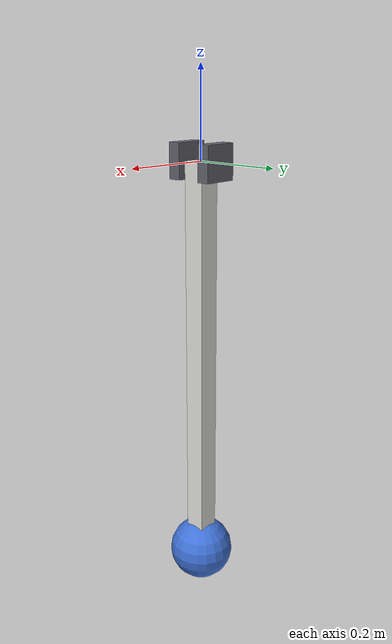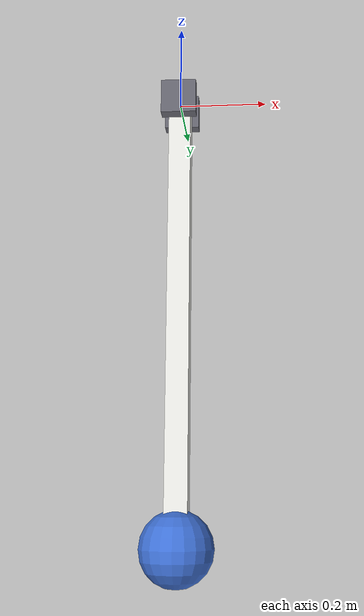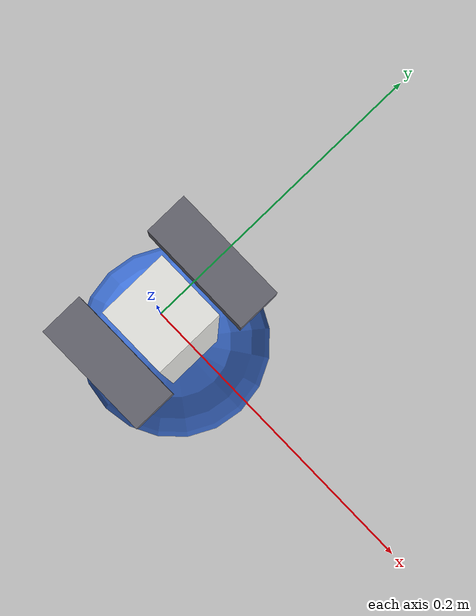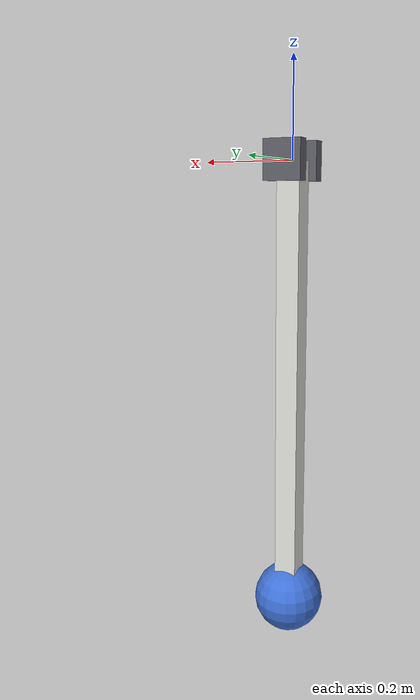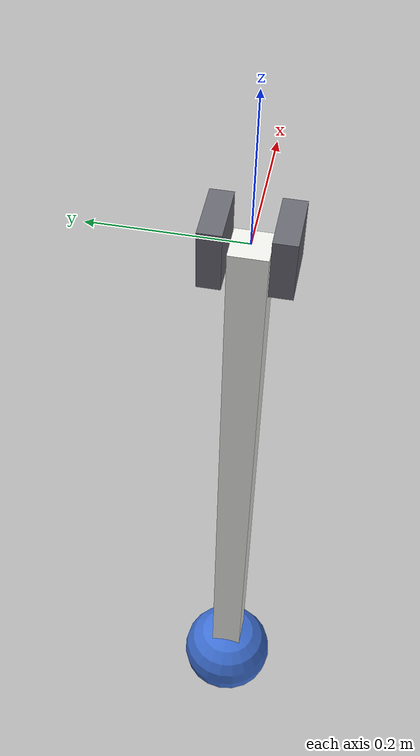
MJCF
<mujoco model="PendulumPassive">

  <compiler angle="radian"/>
  <default>
    <joint type="hinge" damping="0"/>
  </default>

  <worldbody>
    <!-- 静态支点夹板：灰色双板（无关节 → spawn 后固定不动），从 ±y 两侧
         夹住摆杆顶端，铰链轴心居中，每侧留 3 mm 间隙 -->
    <body name="mount">
      <geom name="pivot_block_pos" type="box" size="0.04 0.015 0.04" pos="0 0.043 0" rgba="0.40 0.40 0.44 1"/>
      <geom name="pivot_block_neg" type="box" size="0.04 0.015 0.04" pos="0 -0.043 0" rgba="0.40 0.40 0.44 1"/>

      <!-- 摆体：绕 y 轴摆动，质量集中在杆上保 I=mL²/3 公式干净 -->
      <body name="pendulum">
        <joint name="hinge" axis="0 1 0"/>
        <!-- 摆杆：白色，质量 1 kg，顶端被支点夹板从两侧夹住（杆顶面中心 = 铰链轴心） -->
        <geom name="rod" type="box" size="0.025 0.025 0.5" pos="0 0 -0.5" mass="1" rgba="0.92 0.92 0.90 1"/>
        <!-- 摆锤：蓝色球，视觉配重（mass=0） -->
        <geom name="bob" type="sphere" size="0.08" pos="0 0 -1.0" mass="0" rgba="0.25 0.45 0.85 1"/>
        <site name="tip" pos="0 0 -1.0"/>
      </body>
    </body>
  </worldbody>
</mujoco>
